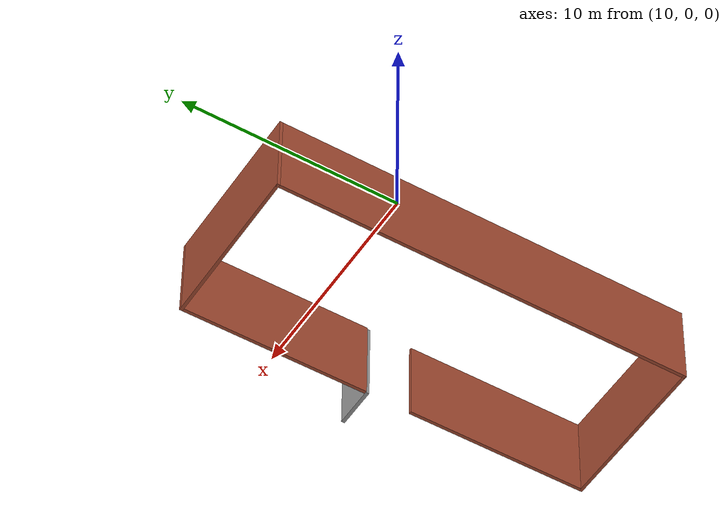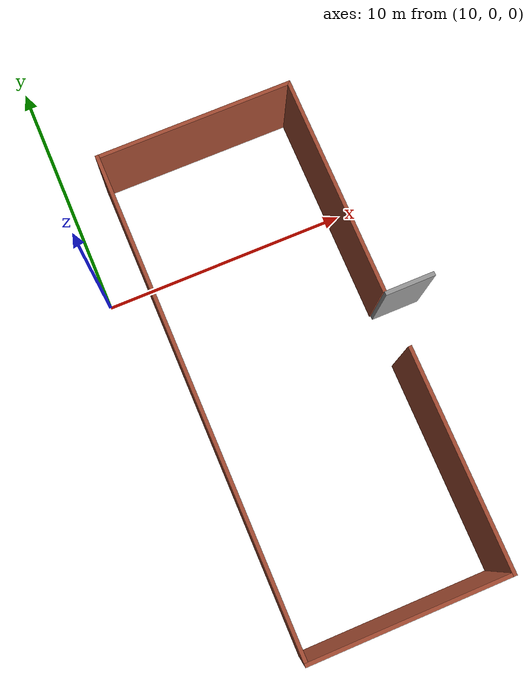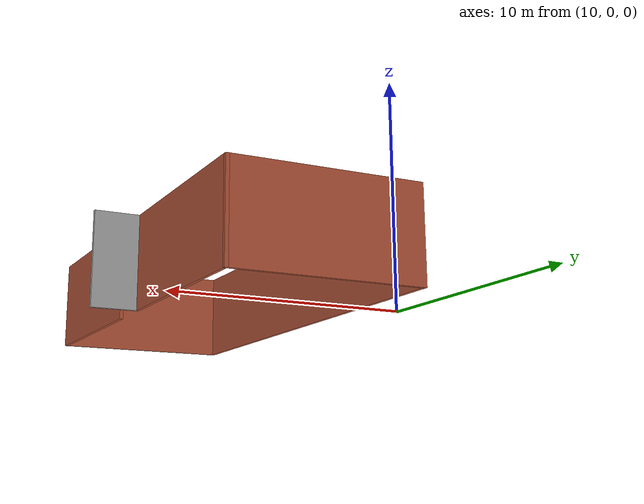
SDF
<?xml version='1.0'?>
<sdf version='1.6'>
  <model name='AGVUntitled'>
    <pose frame=''>15.6481 -5.33784 0 0 -0 0</pose>
    <link name='Door_1'>
      <collision name='Door_1_Collision'>
        <geometry>
          <box>
            <size>2 0.17 4</size>
          </box>
        </geometry>
        <pose frame=''>0 0 2 0 -0 0</pose>
      </collision>
      <visual name='Door_1_Visual'>
        <pose frame=''>0 0 2 0 -0 0</pose>
        <geometry>
          <box>
            <size>2 0.17 4</size>
          </box>
        </geometry>
        <material>
          <script>
            <uri>file://media/materials/scripts/gazebo.material</uri>
            <name>Gazebo/Grey</name>
          </script>
        </material>
      </visual>
      <pose frame=''>4.90883 0.925001 0 0 -0 0</pose>
    </link>
    <link name='Wall_11'>
      <collision name='Wall_11_Collision'>
        <geometry>
          <box>
            <size>8 0.15 4</size>
          </box>
        </geometry>
        <pose frame=''>0 0 2 0 -0 0</pose>
      </collision>
      <visual name='Wall_11_Visual'>
        <pose frame=''>0 0 2 0 -0 0</pose>
        <geometry>
          <box>
            <size>8 0.15 4</size>
          </box>
        </geometry>
        <material>
          <script>
            <uri>file://media/materials/scripts/gazebo.material</uri>
            <name>Gazebo/Bricks</name>
          </script>
          <ambient>1 1 1 1</ambient>
        </material>
        <meta>
          <layer>0</layer>
        </meta>
      </visual>
      <pose frame=''>4.8e-05 9.925 0 0 -0 3.14155</pose>
    </link>
    <link name='Wall_13'>
      <collision name='Wall_13_Collision'>
        <geometry>
          <box>
            <size>20 0.15 4</size>
          </box>
        </geometry>
        <pose frame=''>0 0 2 0 -0 0</pose>
      </collision>
      <visual name='Wall_13_Visual'>
        <pose frame=''>0 0 2 0 -0 0</pose>
        <geometry>
          <box>
            <size>20 0.15 4</size>
          </box>
        </geometry>
        <material>
          <script>
            <uri>file://media/materials/scripts/gazebo.material</uri>
            <name>Gazebo/Bricks</name>
          </script>
          <ambient>1 1 1 1</ambient>
        </material>
        <meta>
          <layer>0</layer>
        </meta>
      </visual>
      <pose frame=''>-3.92495 -1e-06 0 0 -0 -1.57081</pose>
    </link>
    <link name='Wall_16'>
      <collision name='Wall_16_Collision'>
        <geometry>
          <box>
            <size>9 0.15 4</size>
          </box>
        </geometry>
        <pose frame=''>0 0 2 0 -0 0</pose>
      </collision>
      <visual name='Wall_16_Visual'>
        <pose frame=''>0 0 2 0 -0 0</pose>
        <geometry>
          <box>
            <size>9 0.15 4</size>
          </box>
        </geometry>
        <material>
          <script>
            <uri>file://media/materials/scripts/gazebo.material</uri>
            <name>Gazebo/Bricks</name>
          </script>
          <ambient>1 1 1 1</ambient>
        </material>
        <meta>
          <layer>0</layer>
        </meta>
      </visual>
      <pose frame=''>3.92495 5.49984 0 0 -0 -1.5708</pose>
    </link>
    <link name='Wall_22'>
      <collision name='Wall_22_Collision'>
        <geometry>
          <box>
            <size>8 0.15 4</size>
          </box>
        </geometry>
        <pose frame=''>0 0 2 0 -0 0</pose>
      </collision>
      <visual name='Wall_22_Visual'>
        <pose frame=''>0 0 2 0 -0 0</pose>
        <geometry>
          <box>
            <size>8 0.15 4</size>
          </box>
        </geometry>
        <material>
          <script>
            <uri>file://media/materials/scripts/gazebo.material</uri>
            <name>Gazebo/Bricks</name>
          </script>
          <ambient>1 1 1 1</ambient>
        </material>
        <meta>
          <layer>0</layer>
        </meta>
      </visual>
      <pose frame=''>-5.1e-05 -9.92516 0 0 -0 0</pose>
    </link>
    <link name='Wall_26'>
      <collision name='Wall_26_Collision'>
        <geometry>
          <box>
            <size>8.8 0.15 4</size>
          </box>
        </geometry>
        <pose frame=''>0 0 2 0 -0 0</pose>
      </collision>
      <visual name='Wall_26_Visual'>
        <pose frame=''>0 0 2 0 -0 0</pose>
        <geometry>
          <box>
            <size>8.8 0.15 4</size>
          </box>
        </geometry>
        <material>
          <script>
            <uri>file://media/materials/scripts/gazebo.material</uri>
            <name>Gazebo/Bricks</name>
          </script>
          <ambient>1 1 1 1</ambient>
        </material>
        <meta>
          <layer>0</layer>
        </meta>
      </visual>
      <pose frame=''>3.92495 -5.60016 0 0 -0 1.5708</pose>
    </link>
    <static>1</static>
  </model>
</sdf>
